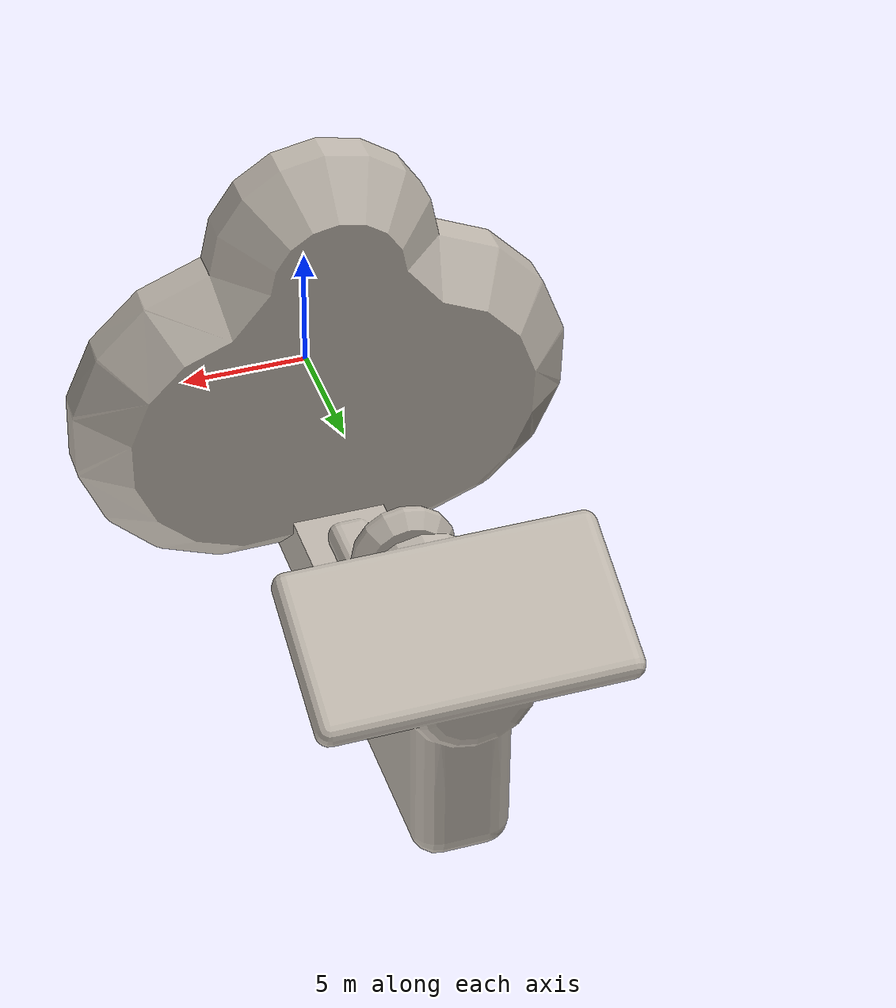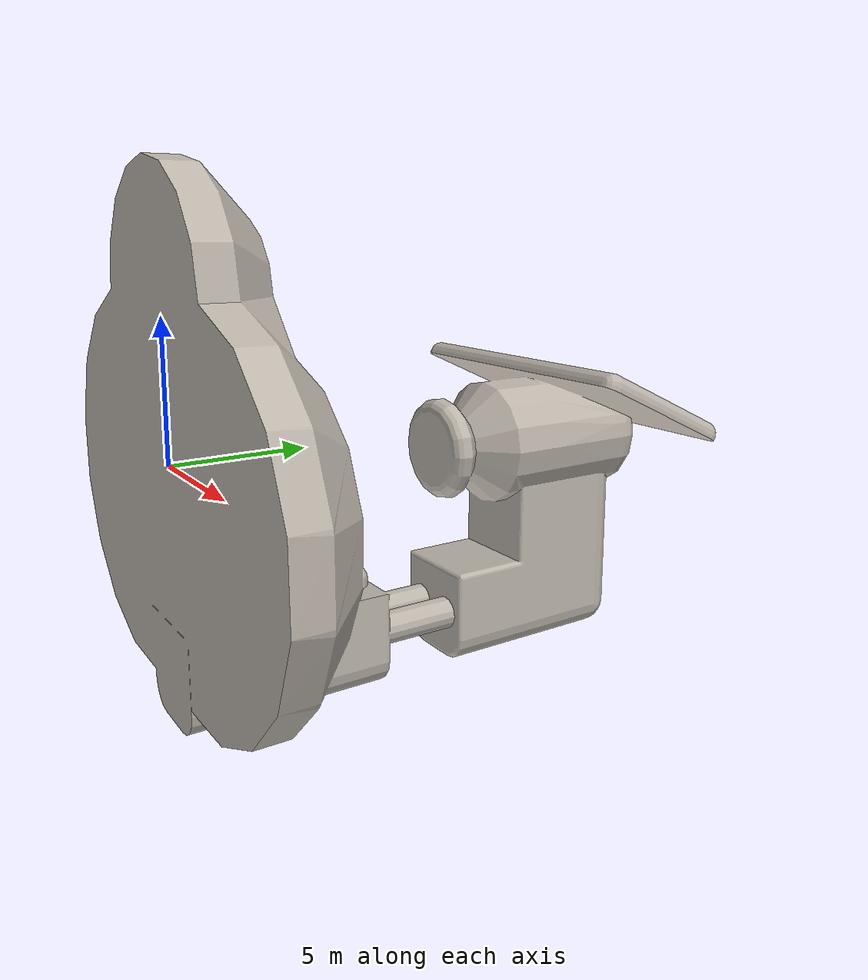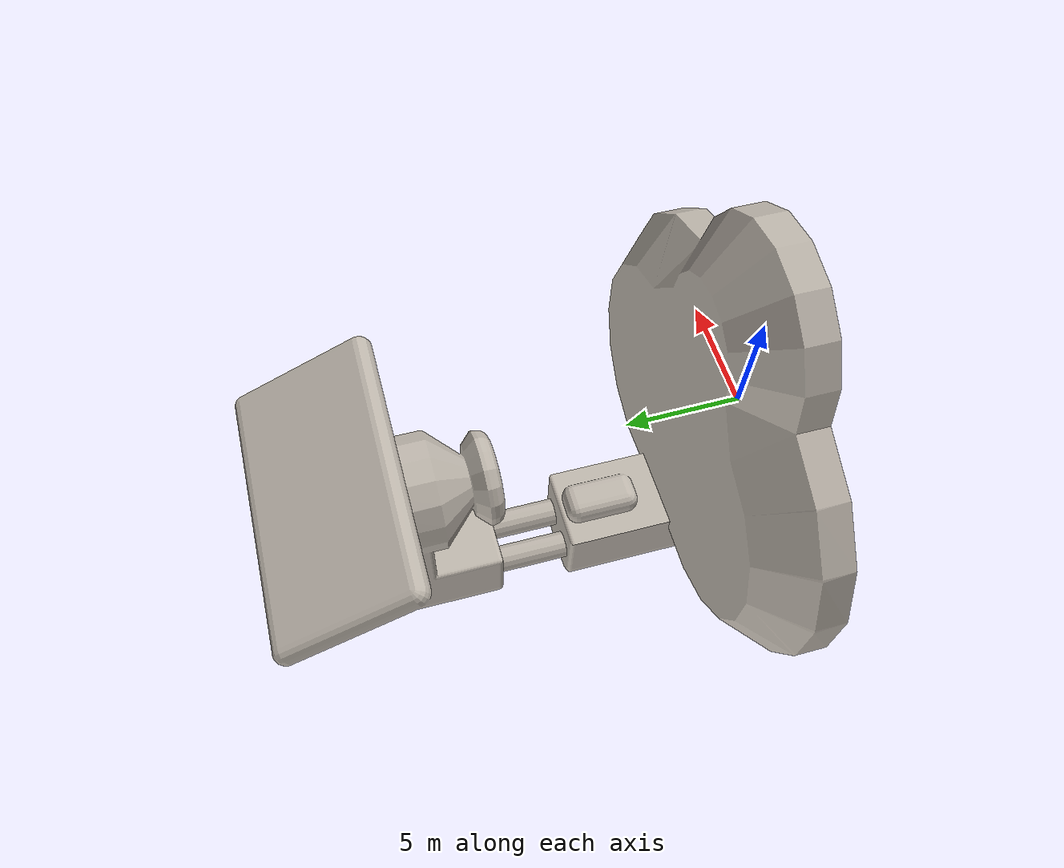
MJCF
<mujoco model="22dfaf57c4654e72928c422eadb32da1">
  <default>
    <default class="visual">
      <geom group="2" type="mesh" contype="0" conaffinity="0"/>
    </default>
    <default class="collision">
      <geom group="3" type="mesh"/>
    </default>
  </default>
  <asset>
    <texture type="2d" name="material_0" file="material_0.png"/>
    <material name="material_0" texture="material_0" specular="0.4000000000000001" shininess="0.001"/>
    <mesh file="22dfaf57c4654e72928c422eadb32da1/22dfaf57c4654e72928c422eadb32da1.obj"/>
    <mesh file="22dfaf57c4654e72928c422eadb32da1/22dfaf57c4654e72928c422eadb32da1_collision_0.obj"/>
    <mesh file="22dfaf57c4654e72928c422eadb32da1/22dfaf57c4654e72928c422eadb32da1_collision_1.obj"/>
    <mesh file="22dfaf57c4654e72928c422eadb32da1/22dfaf57c4654e72928c422eadb32da1_collision_2.obj"/>
    <mesh file="22dfaf57c4654e72928c422eadb32da1/22dfaf57c4654e72928c422eadb32da1_collision_3.obj"/>
    <mesh file="22dfaf57c4654e72928c422eadb32da1/22dfaf57c4654e72928c422eadb32da1_collision_4.obj"/>
    <mesh file="22dfaf57c4654e72928c422eadb32da1/22dfaf57c4654e72928c422eadb32da1_collision_5.obj"/>
    <mesh file="22dfaf57c4654e72928c422eadb32da1/22dfaf57c4654e72928c422eadb32da1_collision_6.obj"/>
    <mesh file="22dfaf57c4654e72928c422eadb32da1/22dfaf57c4654e72928c422eadb32da1_collision_7.obj"/>
    <mesh file="22dfaf57c4654e72928c422eadb32da1/22dfaf57c4654e72928c422eadb32da1_collision_8.obj"/>
    <mesh file="22dfaf57c4654e72928c422eadb32da1/22dfaf57c4654e72928c422eadb32da1_collision_9.obj"/>
    <mesh file="22dfaf57c4654e72928c422eadb32da1/22dfaf57c4654e72928c422eadb32da1_collision_10.obj"/>
    <mesh file="22dfaf57c4654e72928c422eadb32da1/22dfaf57c4654e72928c422eadb32da1_collision_11.obj"/>
    <mesh file="22dfaf57c4654e72928c422eadb32da1/22dfaf57c4654e72928c422eadb32da1_collision_12.obj"/>
    <mesh file="22dfaf57c4654e72928c422eadb32da1/22dfaf57c4654e72928c422eadb32da1_collision_13.obj"/>
    <mesh file="22dfaf57c4654e72928c422eadb32da1/22dfaf57c4654e72928c422eadb32da1_collision_14.obj"/>
    <mesh file="22dfaf57c4654e72928c422eadb32da1/22dfaf57c4654e72928c422eadb32da1_collision_15.obj"/>
    <mesh file="22dfaf57c4654e72928c422eadb32da1/22dfaf57c4654e72928c422eadb32da1_collision_16.obj"/>
    <mesh file="22dfaf57c4654e72928c422eadb32da1/22dfaf57c4654e72928c422eadb32da1_collision_17.obj"/>
    <mesh file="22dfaf57c4654e72928c422eadb32da1/22dfaf57c4654e72928c422eadb32da1_collision_18.obj"/>
    <mesh file="22dfaf57c4654e72928c422eadb32da1/22dfaf57c4654e72928c422eadb32da1_collision_19.obj"/>
    <mesh file="22dfaf57c4654e72928c422eadb32da1/22dfaf57c4654e72928c422eadb32da1_collision_20.obj"/>
    <mesh file="22dfaf57c4654e72928c422eadb32da1/22dfaf57c4654e72928c422eadb32da1_collision_21.obj"/>
    <mesh file="22dfaf57c4654e72928c422eadb32da1/22dfaf57c4654e72928c422eadb32da1_collision_22.obj"/>
  </asset>
  <worldbody>
    <geom material="material_0" mesh="22dfaf57c4654e72928c422eadb32da1" class="visual" mass="1"/>
    <geom mesh="22dfaf57c4654e72928c422eadb32da1_collision_0" rgba="0.7593119498944236 0.28439552287670766 0.24820444106961936 1" class="collision" density="100"/>
    <geom mesh="22dfaf57c4654e72928c422eadb32da1_collision_1" rgba="0.6487826881459818 0.24644437603511027 0.5392747206756029 1" class="collision" density="100"/>
    <geom mesh="22dfaf57c4654e72928c422eadb32da1_collision_2" rgba="0.9061817256747842 0.9439741921508188 0.9057395867060273 1" class="collision" density="100"/>
    <geom mesh="22dfaf57c4654e72928c422eadb32da1_collision_3" rgba="0.5768031560134506 0.2483838176731228 0.9456260520177971 1" class="collision" density="100"/>
    <geom mesh="22dfaf57c4654e72928c422eadb32da1_collision_4" rgba="0.730313394602643 0.89540125523793 0.19741875580142776 1" class="collision" density="100"/>
    <geom mesh="22dfaf57c4654e72928c422eadb32da1_collision_5" rgba="0.10877567722406412 0.17371937578341357 0.7097672204371945 1" class="collision" density="100"/>
    <geom mesh="22dfaf57c4654e72928c422eadb32da1_collision_6" rgba="0.7796691652352344 0.42354763284545627 0.10677293140884447 1" class="collision" density="100"/>
    <geom mesh="22dfaf57c4654e72928c422eadb32da1_collision_7" rgba="0.6691741411390665 0.6463107728850177 0.8609972739822069 1" class="collision" density="100"/>
    <geom mesh="22dfaf57c4654e72928c422eadb32da1_collision_8" rgba="0.5448706054817584 0.4652898862237771 0.8032951838288243 1" class="collision" density="100"/>
    <geom mesh="22dfaf57c4654e72928c422eadb32da1_collision_9" rgba="0.26518457323103894 0.747258328702163 0.7201988345351691 1" class="collision" density="100"/>
    <geom mesh="22dfaf57c4654e72928c422eadb32da1_collision_10" rgba="0.5918775805701713 0.8137839380638775 0.7938298823813227 1" class="collision" density="100"/>
    <geom mesh="22dfaf57c4654e72928c422eadb32da1_collision_11" rgba="0.07047879365013099 0.19017238433499595 0.9597631786331453 1" class="collision" density="100"/>
    <geom mesh="22dfaf57c4654e72928c422eadb32da1_collision_12" rgba="0.8287498904324307 0.41871462076988364 0.773527662070597 1" class="collision" density="100"/>
    <geom mesh="22dfaf57c4654e72928c422eadb32da1_collision_13" rgba="0.8004535950054681 0.04855868961257237 0.9725959203811403 1" class="collision" density="100"/>
    <geom mesh="22dfaf57c4654e72928c422eadb32da1_collision_14" rgba="0.257394145033195 0.5105836981141106 0.8544626532692837 1" class="collision" density="100"/>
    <geom mesh="22dfaf57c4654e72928c422eadb32da1_collision_15" rgba="0.78952036216029 0.47974060298150223 0.8008215166518735 1" class="collision" density="100"/>
    <geom mesh="22dfaf57c4654e72928c422eadb32da1_collision_16" rgba="0.30514576057981757 0.3376500405540289 0.7728138596136297 1" class="collision" density="100"/>
    <geom mesh="22dfaf57c4654e72928c422eadb32da1_collision_17" rgba="0.8666172180052033 0.6011212200619156 0.3217146837177415 1" class="collision" density="100"/>
    <geom mesh="22dfaf57c4654e72928c422eadb32da1_collision_18" rgba="0.7518527543764205 0.7334208065770411 0.5589847237467186 1" class="collision" density="100"/>
    <geom mesh="22dfaf57c4654e72928c422eadb32da1_collision_19" rgba="0.1295958042589539 0.9757029244842842 0.8436349547901902 1" class="collision" density="100"/>
    <geom mesh="22dfaf57c4654e72928c422eadb32da1_collision_20" rgba="0.5344913294577187 0.7449530099645068 0.14735072066618937 1" class="collision" density="100"/>
    <geom mesh="22dfaf57c4654e72928c422eadb32da1_collision_21" rgba="0.6328887150473594 0.18912138536400358 0.4039249265219246 1" class="collision" density="100"/>
    <geom mesh="22dfaf57c4654e72928c422eadb32da1_collision_22" rgba="0.8343960136973824 0.04966336712224184 0.12466486651333142 1" class="collision" density="100"/>
  </worldbody>
</mujoco>
